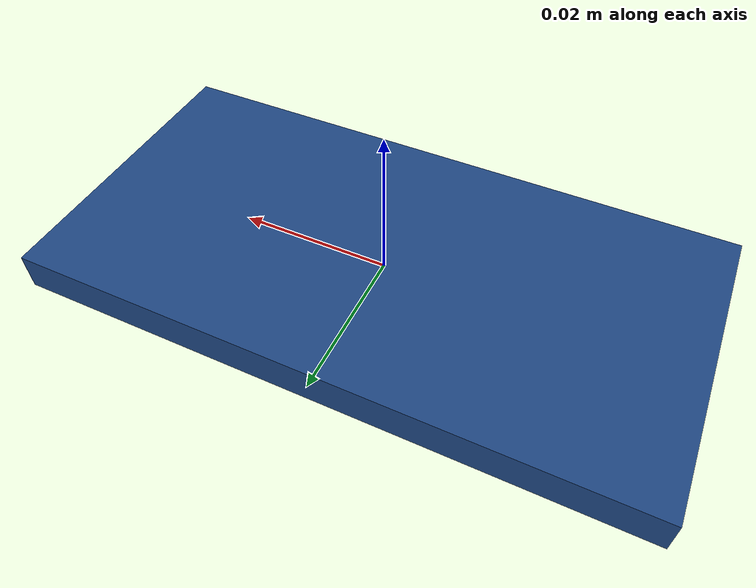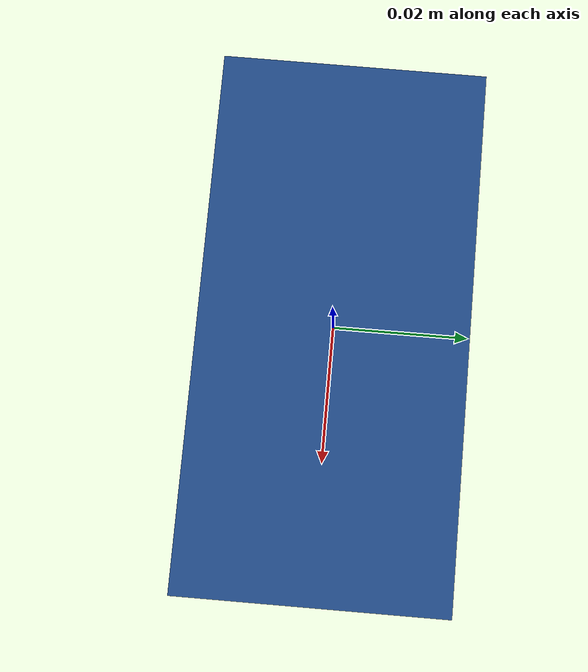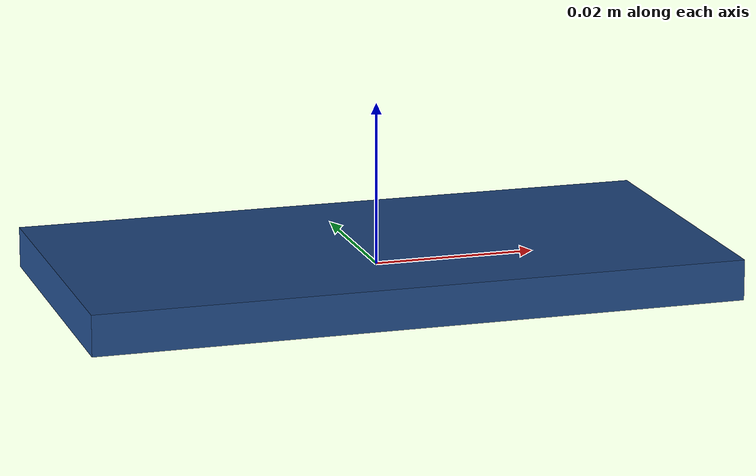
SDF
<?xml version='1.0'?>
<sdf version='1.6'>
  <model name='bno055'>
    <link name='link'>
      <inertial>
        <mass>1</mass>
        <inertia>
          <ixx>0.166667</ixx>
          <ixy>0</ixy>
          <ixz>0</ixz>
          <iyy>0.166667</iyy>
          <iyz>0</iyz>
          <izz>0.166667</izz>
        </inertia>
        <pose frame=''>0 0 0 0 -0 0</pose>
      </inertial>
      <self_collide>0</self_collide>
      <enable_wind>0</enable_wind>
      <kinematic>0</kinematic>
      <pose frame=''>0 0 0 0 -0 0</pose>
      <gravity>1</gravity>
      <visual name='visual'>
        <geometry>
          <box>
            <size>0.08 0.04 0.005</size>
          </box>
        </geometry>
        <material>
          <script>
            <name>Gazebo/Grey</name>
            <uri>file://media/materials/scripts/gazebo.material</uri>
          </script>
          <shader type='vertex'>
            <normal_map>__default__</normal_map>
          </shader>
          <ambient>0.125 0.29 0.529 1</ambient>
          <diffuse>0.7 0.7 0.7 1</diffuse>
          <specular>0.01 0.01 0.01 1</specular>
          <emissive>0 0 0 1</emissive>
        </material>
        <pose frame=''>0 0 0 0 -0 0</pose>
        <transparency>0</transparency>
        <cast_shadows>1</cast_shadows>
      </visual>
      <gravity>0</gravity>
    </link>
    <static>0</static>
    <allow_auto_disable>1</allow_auto_disable>
  </model>
</sdf>
